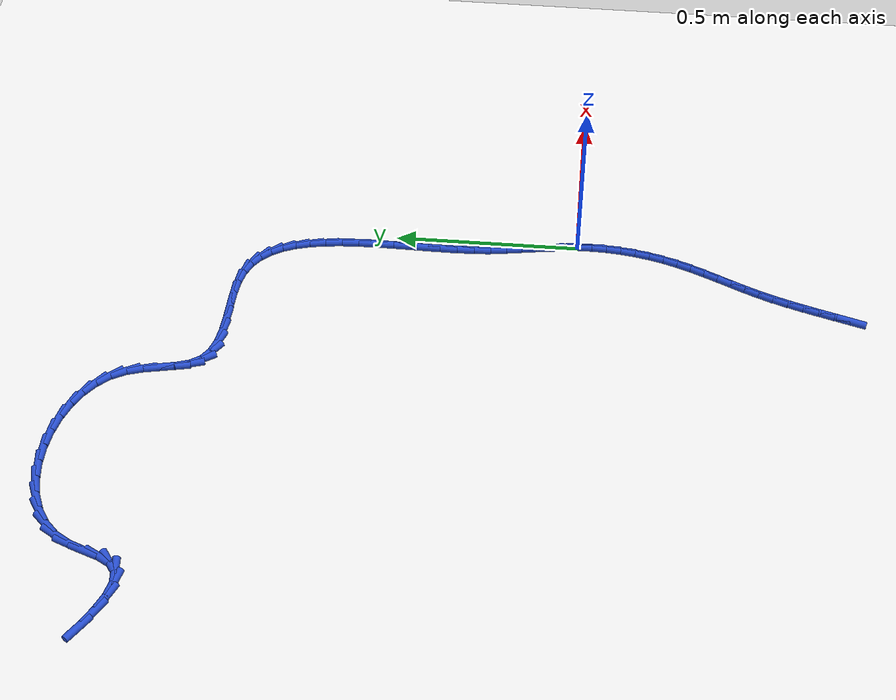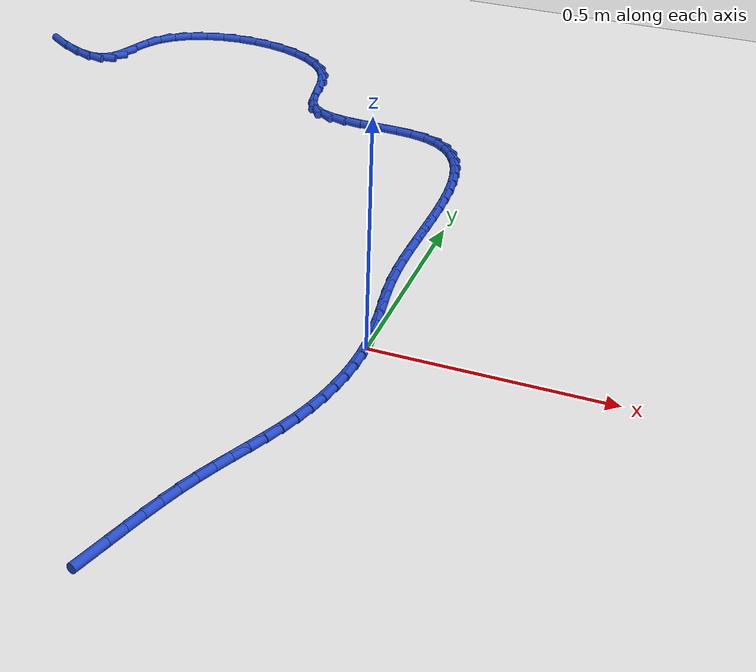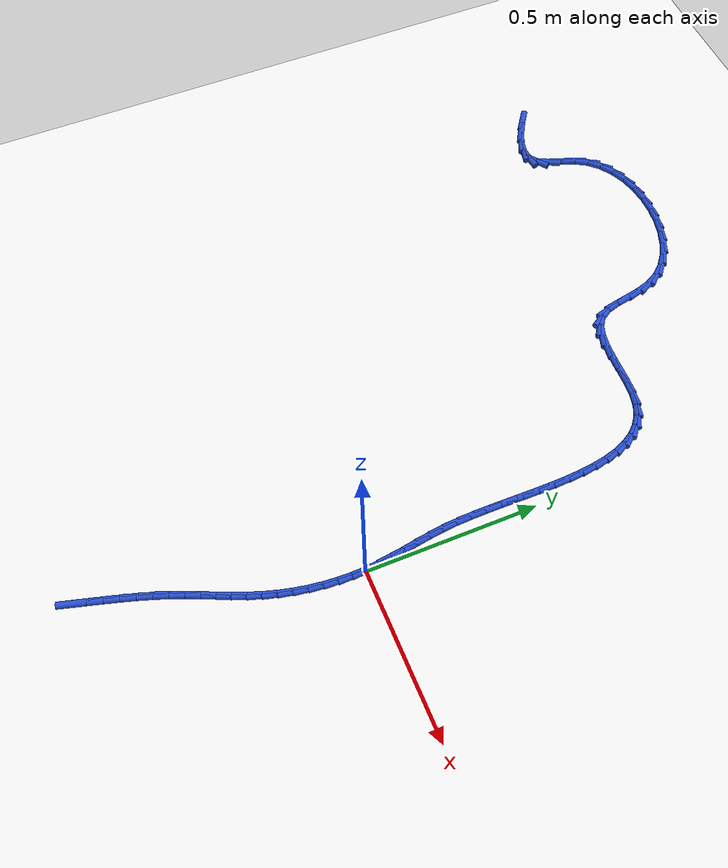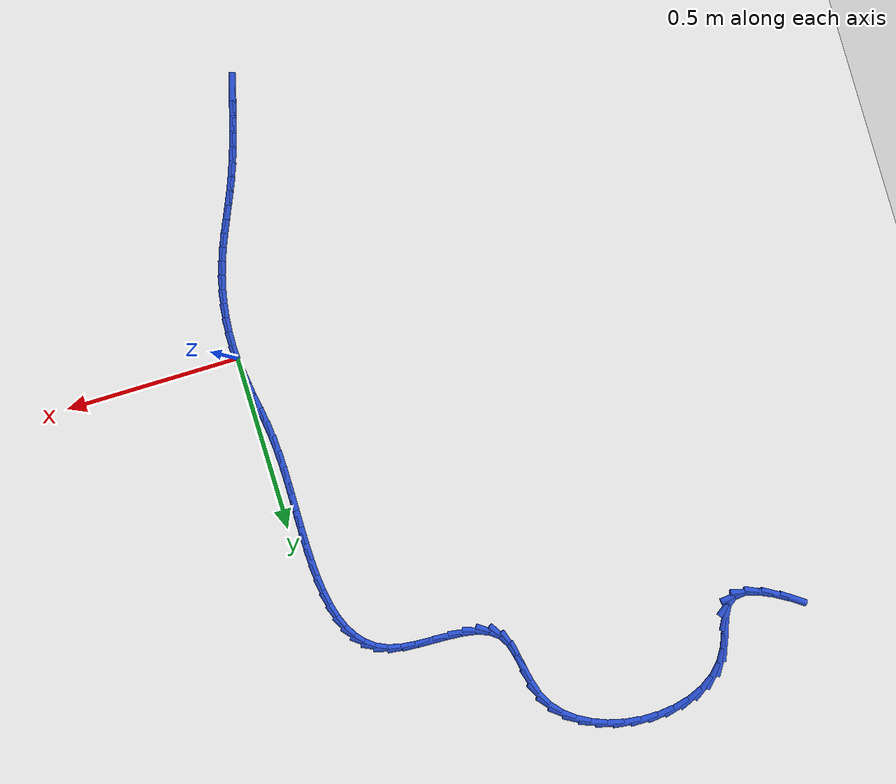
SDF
<sdf version="1.6">
 <world name="default">
  <model name="ground_plane">
   <static>1</static>
   <link name="link">
    <collision name="collision">
     <geometry><plane><normal>0 0 1</normal><size>100 100</size></plane></geometry>
     <surface><friction><ode><mu>100</mu><mu2>50</mu2></ode></friction></surface>
    </collision>
    <visual name="visual">
     <cast_shadows>0</cast_shadows>
     <geometry><plane><normal>0 0 1</normal><size>100 100</size></plane></geometry>
     <material>
      <script><uri>file://media/materials/scripts/gazebo.material</uri><name>Gazebo/WhiteGlow</name></script>
     </material>
    </visual>
   </link>
  </model>
  <model name="line">
   <link name="link_0">
    <pose>-1.5612511283791264e-17 -4.85722573273506e-17 0.01 0 1.57 -1.4862448702870033</pose>
    <collision name="collision">
     <geometry><cylinder><radius>0.01</radius><length>0.08</length></cylinder></geometry>
    </collision>
    <visual name="visual">
     <material>
      <script><name>Gazebo/Blue</name><uri>file://media/materials/scripts/gazebo.material</uri></script>
     </material>
     <geometry><cylinder><radius>0.01</radius><length>0.08</length></cylinder></geometry>
    </visual>
   </link>
   <link name="link_1">
    <pose>-0.003258718003331035 0.038449353384300416 0.01 0 1.57 -1.4411728537391673</pose>
    <collision name="collision">
     <geometry><cylinder><radius>0.01</radius><length>0.08</length></cylinder></geometry>
    </collision>
    <visual name="visual">
     <material>
      <script><name>Gazebo/Blue</name><uri>file://media/materials/scripts/gazebo.material</uri></script>
     </material>
     <geometry><cylinder><radius>0.01</radius><length>0.08</length></cylinder></geometry>
    </visual>
   </link>
   <link name="link_2">
    <pose>-0.008221410162932275 0.07652012922128243 0.01 0 1.57 -1.4147956920683136</pose>
    <collision name="collision">
     <geometry><cylinder><radius>0.01</radius><length>0.08</length></cylinder></geometry>
    </collision>
    <visual name="visual">
     <material>
      <script><name>Gazebo/Blue</name><uri>file://media/materials/scripts/gazebo.material</uri></script>
     </material>
     <geometry><cylinder><radius>0.01</radius><length>0.08</length></cylinder></geometry>
    </visual>
   </link>
   <link name="link_3">
    <pose>-0.014224010775536464 0.11468553762563367 0.01 0 1.57 -1.407584973718065</pose>
    <collision name="collision">
     <geometry><cylinder><radius>0.01</radius><length>0.08</length></cylinder></geometry>
    </collision>
    <visual name="visual">
     <material>
      <script><name>Gazebo/Blue</name><uri>file://media/materials/scripts/gazebo.material</uri></script>
     </material>
     <geometry><cylinder><radius>0.01</radius><length>0.08</length></cylinder></geometry>
    </visual>
   </link>
   <link name="link_4">
    <pose>-0.020602454137876286 0.15341878871204168 0.01 0 1.57 -1.418856955793478</pose>
    <collision name="collision">
     <geometry><cylinder><radius>0.01</radius><length>0.08</length></cylinder></geometry>
    </collision>
    <visual name="visual">
     <material>
      <script><name>Gazebo/Blue</name><uri>file://media/materials/scripts/gazebo.material</uri></script>
     </material>
     <geometry><cylinder><radius>0.01</radius><length>0.08</length></cylinder></geometry>
    </visual>
   </link>
   <link name="link_5">
    <pose>-0.026692674546684465 0.19319309259519418 0.01 0 1.57 -1.4469931721940654</pose>
    <collision name="collision">
     <geometry><cylinder><radius>0.01</radius><length>0.08</length></cylinder></geometry>
    </collision>
    <visual name="visual">
     <material>
      <script><name>Gazebo/Blue</name><uri>file://media/materials/scripts/gazebo.material</uri></script>
     </material>
     <geometry><cylinder><radius>0.01</radius><length>0.08</length></cylinder></geometry>
    </visual>
   </link>
   <link name="link_6">
    <pose>-0.03183060629869373 0.23448165938977883 0.01 0 1.57 -1.4892259229793225</pose>
    <collision name="collision">
     <geometry><cylinder><radius>0.01</radius><length>0.08</length></cylinder></geometry>
    </collision>
    <visual name="visual">
     <material>
      <script><name>Gazebo/Blue</name><uri>file://media/materials/scripts/gazebo.material</uri></script>
     </material>
     <geometry><cylinder><radius>0.01</radius><length>0.08</length></cylinder></geometry>
    </visual>
   </link>
   <link name="link_7">
    <pose>-0.03536742958510055 0.2777445989224827 0.01 0 1.57 -1.5314287881267932</pose>
    <collision name="collision">
     <geometry><cylinder><radius>0.01</radius><length>0.08</length></cylinder></geometry>
    </collision>
    <visual name="visual">
     <material>
      <script><name>Gazebo/Blue</name><uri>file://media/materials/scripts/gazebo.material</uri></script>
     </material>
     <geometry><cylinder><radius>0.01</radius><length>0.08</length></cylinder></geometry>
    </visual>
   </link>
   <link name="link_8">
    <pose>-0.037150559631188164 0.3230156228261835 0.01 0 1.57 -1.5607406526389505</pose>
    <collision name="collision">
     <geometry><cylinder><radius>0.01</radius><length>0.08</length></cylinder></geometry>
    </collision>
    <visual name="visual">
     <material>
      <script><name>Gazebo/Blue</name><uri>file://media/materials/scripts/gazebo.material</uri></script>
     </material>
     <geometry><cylinder><radius>0.01</radius><length>0.08</length></cylinder></geometry>
    </visual>
   </link>
   <link name="link_9">
    <pose>-0.03762120710262899 0.3698182141406869 0.01 0 1.57 1.563150907946527</pose>
    <collision name="collision">
     <geometry><cylinder><radius>0.01</radius><length>0.08</length></cylinder></geometry>
    </collision>
    <visual name="visual">
     <material>
      <script><name>Gazebo/Blue</name><uri>file://media/materials/scripts/gazebo.material</uri></script>
     </material>
     <geometry><cylinder><radius>0.01</radius><length>0.08</length></cylinder></geometry>
    </visual>
   </link>
   <link name="link_10">
    <pose>-0.03725553789822558 0.41764582004124523 0.01 0 1.57 1.5557844448993894</pose>
    <collision name="collision">
     <geometry><cylinder><radius>0.01</radius><length>0.08</length></cylinder></geometry>
    </collision>
    <visual name="visual">
     <material>
      <script><name>Gazebo/Blue</name><uri>file://media/materials/scripts/gazebo.material</uri></script>
     </material>
     <geometry><cylinder><radius>0.01</radius><length>0.08</length></cylinder></geometry>
    </visual>
   </link>
   <link name="link_11">
    <pose>-0.03652971791678038 0.4659918877031102 0.01 0 1.57 1.5581867723345757</pose>
    <collision name="collision">
     <geometry><cylinder><radius>0.01</radius><length>0.08</length></cylinder></geometry>
    </collision>
    <visual name="visual">
     <material>
      <script><name>Gazebo/Blue</name><uri>file://media/materials/scripts/gazebo.material</uri></script>
     </material>
     <geometry><cylinder><radius>0.01</radius><length>0.08</length></cylinder></geometry>
    </visual>
   </link>
   <link name="link_12">
    <pose>-0.0359199130570959 0.514349864301534 0.01 0 1.57 1.5704281151111956</pose>
    <collision name="collision">
     <geometry><cylinder><radius>0.01</radius><length>0.08</length></cylinder></geometry>
    </collision>
    <visual name="visual">
     <material>
      <script><name>Gazebo/Blue</name><uri>file://media/materials/scripts/gazebo.material</uri></script>
     </material>
     <geometry><cylinder><radius>0.01</radius><length>0.08</length></cylinder></geometry>
    </visual>
   </link>
   <link name="link_13">
    <pose>-0.03590228921797464 0.5622131970117685 0.01 0 1.57 -1.5483785040625784</pose>
    <collision name="collision">
     <geometry><cylinder><radius>0.01</radius><length>0.08</length></cylinder></geometry>
    </collision>
    <visual name="visual">
     <material>
      <script><name>Gazebo/Blue</name><uri>file://media/materials/scripts/gazebo.material</uri></script>
     </material>
     <geometry><cylinder><radius>0.01</radius><length>0.08</length></cylinder></geometry>
    </visual>
   </link>
   <link name="link_14">
    <pose>-0.036953012298219096 0.6090753330090657 0.01 0 1.57 -1.5136373803837875</pose>
    <collision name="collision">
     <geometry><cylinder><radius>0.01</radius><length>0.08</length></cylinder></geometry>
    </collision>
    <visual name="visual">
     <material>
      <script><name>Gazebo/Blue</name><uri>file://media/materials/scripts/gazebo.material</uri></script>
     </material>
     <geometry><cylinder><radius>0.01</radius><length>0.08</length></cylinder></geometry>
    </visual>
   </link>
   <link name="link_15">
    <pose>-0.03954824819663176 0.6544297194686776 0.01 0 1.57 -1.4646917946296698</pose>
    <collision name="collision">
     <geometry><cylinder><radius>0.01</radius><length>0.08</length></cylinder></geometry>
    </collision>
    <visual name="visual">
     <material>
      <script><name>Gazebo/Blue</name><uri>file://media/materials/scripts/gazebo.material</uri></script>
     </material>
     <geometry><cylinder><radius>0.01</radius><length>0.08</length></cylinder></geometry>
    </visual>
   </link>
   <link name="link_16">
    <pose>-0.04416416281201512 0.6977698035658562 0.01 0 1.57 -1.3982782623419683</pose>
    <collision name="collision">
     <geometry><cylinder><radius>0.01</radius><length>0.08</length></cylinder></geometry>
    </collision>
    <visual name="visual">
     <material>
      <script><name>Gazebo/Blue</name><uri>file://media/materials/scripts/gazebo.material</uri></script>
     </material>
     <geometry><cylinder><radius>0.01</radius><length>0.08</length></cylinder></geometry>
    </visual>
   </link>
   <link name="link_17">
    <pose>-0.051276922043171656 0.7385890324758535 0.01 0 1.57 -1.3099975276250433</pose>
    <collision name="collision">
     <geometry><cylinder><radius>0.01</radius><length>0.08</length></cylinder></geometry>
    </collision>
    <visual name="visual">
     <material>
      <script><name>Gazebo/Blue</name><uri>file://media/materials/scripts/gazebo.material</uri></script>
     </material>
     <geometry><cylinder><radius>0.01</radius><length>0.08</length></cylinder></geometry>
    </visual>
   </link>
   <link name="link_18">
    <pose>-0.061362691788903884 0.7763808533739213 0.01 0 1.57 -1.1945296538129013</pose>
    <collision name="collision">
     <geometry><cylinder><radius>0.01</radius><length>0.08</length></cylinder></geometry>
    </collision>
    <visual name="visual">
     <material>
      <script><name>Gazebo/Blue</name><uri>file://media/materials/scripts/gazebo.material</uri></script>
     </material>
     <geometry><cylinder><radius>0.01</radius><length>0.08</length></cylinder></geometry>
    </visual>
   </link>
   <link name="link_19">
    <pose>-0.0748976379480143 0.8106387134353118 0.01 0 1.57 -1.0468428096407503</pose>
    <collision name="collision">
     <geometry><cylinder><radius>0.01</radius><length>0.08</length></cylinder></geometry>
    </collision>
    <visual name="visual">
     <material>
      <script><name>Gazebo/Blue</name><uri>file://media/materials/scripts/gazebo.material</uri></script>
     </material>
     <geometry><cylinder><radius>0.01</radius><length>0.08</length></cylinder></geometry>
    </visual>
   </link>
   <link name="link_20">
    <pose>-0.09235792641930539 0.840856059835277 0.01 0 1.57 -0.8653518427793409</pose>
    <collision name="collision">
     <geometry><cylinder><radius>0.01</radius><length>0.08</length></cylinder></geometry>
    </collision>
    <visual name="visual">
     <material>
      <script><name>Gazebo/Blue</name><uri>file://media/materials/scripts/gazebo.material</uri></script>
     </material>
     <geometry><cylinder><radius>0.01</radius><length>0.08</length></cylinder></geometry>
    </visual>
   </link>
   <link name="link_21">
    <pose>-0.11421972310157957 0.8665263397490685 0.01 0 1.57 -0.6568185991958423</pose>
    <collision name="collision">
     <geometry><cylinder><radius>0.01</radius><length>0.08</length></cylinder></geometry>
    </collision>
    <visual name="visual">
     <material>
      <script><name>Gazebo/Blue</name><uri>file://media/materials/scripts/gazebo.material</uri></script>
     </material>
     <geometry><cylinder><radius>0.01</radius><length>0.08</length></cylinder></geometry>
    </visual>
   </link>
   <link name="link_22">
    <pose>-0.14095919389363945 0.8871430003519389 0.01 0 1.57 -0.43866219690416813</pose>
    <collision name="collision">
     <geometry><cylinder><radius>0.01</radius><length>0.08</length></cylinder></geometry>
    </collision>
    <visual name="visual">
     <material>
      <script><name>Gazebo/Blue</name><uri>file://media/materials/scripts/gazebo.material</uri></script>
     </material>
     <geometry><cylinder><radius>0.01</radius><length>0.08</length></cylinder></geometry>
    </visual>
   </link>
   <link name="link_23">
    <pose>-0.17305250469428757 0.90219948881914 0.01 0 1.57 -0.2383044312807469</pose>
    <collision name="collision">
     <geometry><cylinder><radius>0.01</radius><length>0.08</length></cylinder></geometry>
    </collision>
    <visual name="visual">
     <material>
      <script><name>Gazebo/Blue</name><uri>file://media/materials/scripts/gazebo.material</uri></script>
     </material>
     <geometry><cylinder><radius>0.01</radius><length>0.08</length></cylinder></geometry>
    </visual>
   </link>
   <link name="link_24">
    <pose>-0.21080017339107024 0.9113691651961542 0.01 0 1.57 -0.10668738232148889</pose>
    <collision name="collision">
     <geometry><cylinder><radius>0.01</radius><length>0.08</length></cylinder></geometry>
    </collision>
    <visual name="visual">
     <material>
      <script><name>Gazebo/Blue</name><uri>file://media/materials/scripts/gazebo.material</uri></script>
     </material>
     <geometry><cylinder><radius>0.01</radius><length>0.08</length></cylinder></geometry>
    </visual>
   </link>
   <link name="link_25">
    <pose>-0.2529788580198435 0.9158862497840748 0.01 0 1.57 -0.042577228251818686</pose>
    <collision name="collision">
     <geometry><cylinder><radius>0.01</radius><length>0.08</length></cylinder></geometry>
    </collision>
    <visual name="visual">
     <material>
      <script><name>Gazebo/Blue</name><uri>file://media/materials/scripts/gazebo.material</uri></script>
     </material>
     <geometry><cylinder><radius>0.01</radius><length>0.08</length></cylinder></geometry>
    </visual>
   </link>
   <link name="link_26">
    <pose>-0.29758267507103575 0.9177865050962073 0.01 0 1.57 -0.029441684997133778</pose>
    <collision name="collision">
     <geometry><cylinder><radius>0.01</radius><length>0.08</length></cylinder></geometry>
    </collision>
    <visual name="visual">
     <material>
      <script><name>Gazebo/Blue</name><uri>file://media/materials/scripts/gazebo.material</uri></script>
     </material>
     <geometry><cylinder><radius>0.01</radius><length>0.08</length></cylinder></geometry>
    </visual>
   </link>
   <link name="link_27">
    <pose>-0.3425993356885788 0.9191122545187329 0.01 0 1.57 -0.06425380756421745</pose>
    <collision name="collision">
     <geometry><cylinder><radius>0.01</radius><length>0.08</length></cylinder></geometry>
    </collision>
    <visual name="visual">
     <material>
      <script><name>Gazebo/Blue</name><uri>file://media/materials/scripts/gazebo.material</uri></script>
     </material>
     <geometry><cylinder><radius>0.01</radius><length>0.08</length></cylinder></geometry>
    </visual>
   </link>
   <link name="link_28">
    <pose>-0.38601655101640436 0.921905821437833 0.01 0 1.57 -0.15705853035319087</pose>
    <collision name="collision">
     <geometry><cylinder><radius>0.01</radius><length>0.08</length></cylinder></geometry>
    </collision>
    <visual name="visual">
     <material>
      <script><name>Gazebo/Blue</name><uri>file://media/materials/scripts/gazebo.material</uri></script>
     </material>
     <geometry><cylinder><radius>0.01</radius><length>0.08</length></cylinder></geometry>
    </visual>
   </link>
   <link name="link_29">
    <pose>-0.42582203219844467 0.9282095292396894 0.01 0 1.57 -0.3338745355398296</pose>
    <collision name="collision">
     <geometry><cylinder><radius>0.01</radius><length>0.08</length></cylinder></geometry>
    </collision>
    <visual name="visual">
     <material>
      <script><name>Gazebo/Blue</name><uri>file://media/materials/scripts/gazebo.material</uri></script>
     </material>
     <geometry><cylinder><radius>0.01</radius><length>0.08</length></cylinder></geometry>
    </visual>
   </link>
   <link name="link_30">
    <pose>-0.46000349037863153 0.9400657013104841 0.01 0 1.57 -0.6323694863271845</pose>
    <collision name="collision">
     <geometry><cylinder><radius>0.01</radius><length>0.08</length></cylinder></geometry>
    </collision>
    <visual name="visual">
     <material>
      <script><name>Gazebo/Blue</name><uri>file://media/materials/scripts/gazebo.material</uri></script>
     </material>
     <geometry><cylinder><radius>0.01</radius><length>0.08</length></cylinder></geometry>
    </visual>
   </link>
   <link name="link_31">
    <pose>-0.4865486367008969 0.9595166610363981 0.01 0 1.57 -1.018316951791573</pose>
    <collision name="collision">
     <geometry><cylinder><radius>0.01</radius><length>0.08</length></cylinder></geometry>
    </collision>
    <visual name="visual">
     <material>
      <script><name>Gazebo/Blue</name><uri>file://media/materials/scripts/gazebo.material</uri></script>
     </material>
     <geometry><cylinder><radius>0.01</radius><length>0.08</length></cylinder></geometry>
    </visual>
   </link>
   <link name="link_32">
    <pose>-0.5041212802929735 0.9880195365777795 0.01 0 1.57 -1.2750928583027492</pose>
    <collision name="collision">
     <geometry><cylinder><radius>0.01</radius><length>0.08</length></cylinder></geometry>
    </collision>
    <visual name="visual">
     <material>
      <script><name>Gazebo/Blue</name><uri>file://media/materials/scripts/gazebo.material</uri></script>
     </material>
     <geometry><cylinder><radius>0.01</radius><length>0.08</length></cylinder></geometry>
    </visual>
   </link>
   <link name="link_33">
    <pose>-0.5150415776935554 1.0238667120783544 0.01 0 1.57 -1.379720333185816</pose>
    <collision name="collision">
     <geometry><cylinder><radius>0.01</radius><length>0.08</length></cylinder></geometry>
    </collision>
    <visual name="visual">
     <material>
      <script><name>Gazebo/Blue</name><uri>file://media/materials/scripts/gazebo.material</uri></script>
     </material>
     <geometry><cylinder><radius>0.01</radius><length>0.08</length></cylinder></geometry>
    </visual>
   </link>
   <link name="link_34">
    <pose>-0.5228600468036078 1.0642856349234142 0.01 0 1.57 -1.377398346864367</pose>
    <collision name="collision">
     <geometry><cylinder><radius>0.01</radius><length>0.08</length></cylinder></geometry>
    </collision>
    <visual name="visual">
     <material>
      <script><name>Gazebo/Blue</name><uri>file://media/materials/scripts/gazebo.material</uri></script>
     </material>
     <geometry><cylinder><radius>0.01</radius><length>0.08</length></cylinder></geometry>
    </visual>
   </link>
   <link name="link_35">
    <pose>-0.5311281315239995 1.106502951000932 0.01 0 1.57 -1.2816448529172568</pose>
    <collision name="collision">
     <geometry><cylinder><radius>0.01</radius><length>0.08</length></cylinder></geometry>
    </collision>
    <visual name="visual">
     <material>
      <script><name>Gazebo/Blue</name><uri>file://media/materials/scripts/gazebo.material</uri></script>
     </material>
     <geometry><cylinder><radius>0.01</radius><length>0.08</length></cylinder></geometry>
    </visual>
   </link>
   <link name="link_36">
    <pose>-0.5433972757555996 1.1477453061988785 0.01 0 1.57 -1.0886192543655673</pose>
    <collision name="collision">
     <geometry><cylinder><radius>0.01</radius><length>0.08</length></cylinder></geometry>
    </collision>
    <visual name="visual">
     <material>
      <script><name>Gazebo/Blue</name><uri>file://media/materials/scripts/gazebo.material</uri></script>
     </material>
     <geometry><cylinder><radius>0.01</radius><length>0.08</length></cylinder></geometry>
    </visual>
   </link>
   <link name="link_37">
    <pose>-0.5630645112711433 1.1853225793798068 0.01 0 1.57 -0.8631332786445037</pose>
    <collision name="collision">
     <geometry><cylinder><radius>0.01</radius><length>0.08</length></cylinder></geometry>
    </collision>
    <visual name="visual">
     <material>
      <script><name>Gazebo/Blue</name><uri>file://media/materials/scripts/gazebo.material</uri></script>
     </material>
     <geometry><cylinder><radius>0.01</radius><length>0.08</length></cylinder></geometry>
    </visual>
   </link>
   <link name="link_38">
    <pose>-0.5909585028613503 1.2179290796729252 0.01 0 1.57 -0.6678142674106703</pose>
    <collision name="collision">
     <geometry><cylinder><radius>0.01</radius><length>0.08</length></cylinder></geometry>
    </collision>
    <visual name="visual">
     <material>
      <script><name>Gazebo/Blue</name><uri>file://media/materials/scripts/gazebo.material</uri></script>
     </material>
     <geometry><cylinder><radius>0.01</radius><length>0.08</length></cylinder></geometry>
    </visual>
   </link>
   <link name="link_39">
    <pose>-0.6257899730940383 1.2454007534177607 0.01 0 1.57 -0.5024229894165705</pose>
    <collision name="collision">
     <geometry><cylinder><radius>0.01</radius><length>0.08</length></cylinder></geometry>
    </collision>
    <visual name="visual">
     <material>
      <script><name>Gazebo/Blue</name><uri>file://media/materials/scripts/gazebo.material</uri></script>
     </material>
     <geometry><cylinder><radius>0.01</radius><length>0.08</length></cylinder></geometry>
    </visual>
   </link>
   <link name="link_40">
    <pose>-0.6662063686550959 1.2676076546365418 0.01 0 1.57 -0.36012278649121715</pose>
    <collision name="collision">
     <geometry><cylinder><radius>0.01</radius><length>0.08</length></cylinder></geometry>
    </collision>
    <visual name="visual">
     <material>
      <script><name>Gazebo/Blue</name><uri>file://media/materials/scripts/gazebo.material</uri></script>
     </material>
     <geometry><cylinder><radius>0.01</radius><length>0.08</length></cylinder></geometry>
    </visual>
   </link>
   <link name="link_41">
    <pose>-0.710855136230413 1.2844198373514986 0.01 0 1.57 -0.23316942395733173</pose>
    <collision name="collision">
     <geometry><cylinder><radius>0.01</radius><length>0.08</length></cylinder></geometry>
    </collision>
    <visual name="visual">
     <material>
      <script><name>Gazebo/Blue</name><uri>file://media/materials/scripts/gazebo.material</uri></script>
     </material>
     <geometry><cylinder><radius>0.01</radius><length>0.08</length></cylinder></geometry>
    </visual>
   </link>
   <link name="link_42">
    <pose>-0.7583837225058784 1.2957073555848606 0.01 0 1.57 -0.11432570797332499</pose>
    <collision name="collision">
     <geometry><cylinder><radius>0.01</radius><length>0.08</length></cylinder></geometry>
    </collision>
    <visual name="visual">
     <material>
      <script><name>Gazebo/Blue</name><uri>file://media/materials/scripts/gazebo.material</uri></script>
     </material>
     <geometry><cylinder><radius>0.01</radius><length>0.08</length></cylinder></geometry>
    </visual>
   </link>
   <link name="link_43">
    <pose>-0.807439574167382 1.3013402633588576 0.01 0 1.57 0.003080366585114261</pose>
    <collision name="collision">
     <geometry><cylinder><radius>0.01</radius><length>0.08</length></cylinder></geometry>
    </collision>
    <visual name="visual">
     <material>
      <script><name>Gazebo/Blue</name><uri>file://media/materials/scripts/gazebo.material</uri></script>
     </material>
     <geometry><cylinder><radius>0.01</radius><length>0.08</length></cylinder></geometry>
    </visual>
   </link>
   <link name="link_44">
    <pose>-0.8566701379008121 1.301188614695719 0.01 0 1.57 0.12557522661740173</pose>
    <collision name="collision">
     <geometry><cylinder><radius>0.01</radius><length>0.08</length></cylinder></geometry>
    </collision>
    <visual name="visual">
     <material>
      <script><name>Gazebo/Blue</name><uri>file://media/materials/scripts/gazebo.material</uri></script>
     </material>
     <geometry><cylinder><radius>0.01</radius><length>0.08</length></cylinder></geometry>
    </visual>
   </link>
   <link name="link_45">
    <pose>-0.9047228603920594 1.295122463617675 0.01 0 1.57 0.26001394244173315</pose>
    <collision name="collision">
     <geometry><cylinder><radius>0.01</radius><length>0.08</length></cylinder></geometry>
    </collision>
    <visual name="visual">
     <material>
      <script><name>Gazebo/Blue</name><uri>file://media/materials/scripts/gazebo.material</uri></script>
     </material>
     <geometry><cylinder><radius>0.01</radius><length>0.08</length></cylinder></geometry>
    </visual>
   </link>
   <link name="link_46">
    <pose>-0.950245188327012 1.283011864146955 0.01 0 1.57 0.41377559666240427</pose>
    <collision name="collision">
     <geometry><cylinder><radius>0.01</radius><length>0.08</length></cylinder></geometry>
    </collision>
    <visual name="visual">
     <material>
      <script><name>Gazebo/Blue</name><uri>file://media/materials/scripts/gazebo.material</uri></script>
     </material>
     <geometry><cylinder><radius>0.01</radius><length>0.08</length></cylinder></geometry>
    </visual>
   </link>
   <link name="link_47">
    <pose>-0.9918845683915597 1.2647268703057886 0.01 0 1.57 0.59406505190191</pose>
    <collision name="collision">
     <geometry><cylinder><radius>0.01</radius><length>0.08</length></cylinder></geometry>
    </collision>
    <visual name="visual">
     <material>
      <script><name>Gazebo/Blue</name><uri>file://media/materials/scripts/gazebo.material</uri></script>
     </material>
     <geometry><cylinder><radius>0.01</radius><length>0.08</length></cylinder></geometry>
    </visual>
   </link>
   <link name="link_48">
    <pose>-1.028288447271592 1.240137536116406 0.01 0 1.57 0.8052477446286561</pose>
    <collision name="collision">
     <geometry><cylinder><radius>0.01</radius><length>0.08</length></cylinder></geometry>
    </collision>
    <visual name="visual">
     <material>
      <script><name>Gazebo/Blue</name><uri>file://media/materials/scripts/gazebo.material</uri></script>
     </material>
     <geometry><cylinder><radius>0.01</radius><length>0.08</length></cylinder></geometry>
    </visual>
   </link>
   <link name="link_49">
    <pose>-1.0581042716529976 1.209113915601036 0.01 0 1.57 1.040384360212619</pose>
    <collision name="collision">
     <geometry><cylinder><radius>0.01</radius><length>0.08</length></cylinder></geometry>
    </collision>
    <visual name="visual">
     <material>
      <script><name>Gazebo/Blue</name><uri>file://media/materials/scripts/gazebo.material</uri></script>
     </material>
     <geometry><cylinder><radius>0.01</radius><length>0.08</length></cylinder></geometry>
    </visual>
   </link>
   <link name="link_50">
    <pose>-1.0800849661528944 1.1716342930377543 0.01 0 1.57 1.2072469409295552</pose>
    <collision name="collision">
     <geometry><cylinder><radius>0.01</radius><length>0.08</length></cylinder></geometry>
    </collision>
    <visual name="visual">
     <material>
      <script><name>Gazebo/Blue</name><uri>file://media/materials/scripts/gazebo.material</uri></script>
     </material>
     <geometry><cylinder><radius>0.01</radius><length>0.08</length></cylinder></geometry>
    </visual>
   </link>
   <link name="link_51">
    <pose>-1.095734877289373 1.1305001697777635 0.01 0 1.57 1.2311267569901967</pose>
    <collision name="collision">
     <geometry><cylinder><radius>0.01</radius><length>0.08</length></cylinder></geometry>
    </collision>
    <visual name="visual">
     <material>
      <script><name>Gazebo/Blue</name><uri>file://media/materials/scripts/gazebo.material</uri></script>
     </material>
     <geometry><cylinder><radius>0.01</radius><length>0.08</length></cylinder></geometry>
    </visual>
   </link>
   <link name="link_52">
    <pose>-1.1095037157275238 1.0915352671900094 0.01 0 1.57 1.079768653693937</pose>
    <collision name="collision">
     <geometry><cylinder><radius>0.01</radius><length>0.08</length></cylinder></geometry>
    </collision>
    <visual name="visual">
     <material>
      <script><name>Gazebo/Blue</name><uri>file://media/materials/scripts/gazebo.material</uri></script>
     </material>
     <geometry><cylinder><radius>0.01</radius><length>0.08</length></cylinder></geometry>
    </visual>
   </link>
   <link name="link_53">
    <pose>-1.1259855149364908 1.0607113953841394 0.01 0 1.57 0.6357463018794571</pose>
    <collision name="collision">
     <geometry><cylinder><radius>0.01</radius><length>0.08</length></cylinder></geometry>
    </collision>
    <visual name="visual">
     <material>
      <script><name>Gazebo/Blue</name><uri>file://media/materials/scripts/gazebo.material</uri></script>
     </material>
     <geometry><cylinder><radius>0.01</radius><length>0.08</length></cylinder></geometry>
    </visual>
   </link>
   <link name="link_54">
    <pose>-1.1493722763051606 1.0434530660826582 0.01 0 1.57 0.10055534122656933</pose>
    <collision name="collision">
     <geometry><cylinder><radius>0.01</radius><length>0.08</length></cylinder></geometry>
    </collision>
    <visual name="visual">
     <material>
      <script><name>Gazebo/Blue</name><uri>file://media/materials/scripts/gazebo.material</uri></script>
     </material>
     <geometry><cylinder><radius>0.01</radius><length>0.08</length></cylinder></geometry>
    </visual>
   </link>
   <link name="link_55">
    <pose>-1.1802922682106312 1.0403333738567366 0.01 0 1.57 -0.2386878936296153</pose>
    <collision name="collision">
     <geometry><cylinder><radius>0.01</radius><length>0.08</length></cylinder></geometry>
    </collision>
    <visual name="visual">
     <material>
      <script><name>Gazebo/Blue</name><uri>file://media/materials/scripts/gazebo.material</uri></script>
     </material>
     <geometry><cylinder><radius>0.01</radius><length>0.08</length></cylinder></geometry>
    </visual>
   </link>
   <link name="link_56">
    <pose>-1.2175110831985427 1.0493896965315868 0.01 0 1.57 -0.4273201772210817</pose>
    <collision name="collision">
     <geometry><cylinder><radius>0.01</radius><length>0.08</length></cylinder></geometry>
    </collision>
    <visual name="visual">
     <material>
      <script><name>Gazebo/Blue</name><uri>file://media/materials/scripts/gazebo.material</uri></script>
     </material>
     <geometry><cylinder><radius>0.01</radius><length>0.08</length></cylinder></geometry>
    </visual>
   </link>
   <link name="link_57">
    <pose>-1.2597780726802024 1.068637302386784 0.01 0 1.57 -0.5374684256696984</pose>
    <collision name="collision">
     <geometry><cylinder><radius>0.01</radius><length>0.08</length></cylinder></geometry>
    </collision>
    <visual name="visual">
     <material>
      <script><name>Gazebo/Blue</name><uri>file://media/materials/scripts/gazebo.material</uri></script>
     </material>
     <geometry><cylinder><radius>0.01</radius><length>0.08</length></cylinder></geometry>
    </visual>
   </link>
   <link name="link_58">
    <pose>-1.3058425880669164 1.096091459701903 0.01 0 1.57 -0.6058496450434656</pose>
    <collision name="collision">
     <geometry><cylinder><radius>0.01</radius><length>0.08</length></cylinder></geometry>
    </collision>
    <visual name="visual">
     <material>
      <script><name>Gazebo/Blue</name><uri>file://media/materials/scripts/gazebo.material</uri></script>
     </material>
     <geometry><cylinder><radius>0.01</radius><length>0.08</length></cylinder></geometry>
    </visual>
   </link>
   <link name="link_221">
    <pose>-0.20745217922492123 -0.73667657819552 0.01 0 1.57 1.2943620693058102</pose>
    <collision name="collision">
     <geometry><cylinder><radius>0.01</radius><length>0.08</length></cylinder></geometry>
    </collision>
    <visual name="visual">
     <material>
      <script><name>Gazebo/Blue</name><uri>file://media/materials/scripts/gazebo.material</uri></script>
     </material>
     <geometry><cylinder><radius>0.01</radius><length>0.08</length></cylinder></geometry>
    </visual>
   </link>
   <link name="link_222">
    <pose>-0.1958495382458143 -0.6957786722949092 0.01 0 1.57 1.293533930557469</pose>
    <collision name="collision">
     <geometry><cylinder><radius>0.01</radius><length>0.08</length></cylinder></geometry>
    </collision>
    <visual name="visual">
     <material>
      <script><name>Gazebo/Blue</name><uri>file://media/materials/scripts/gazebo.material</uri></script>
     </material>
     <geometry><cylinder><radius>0.01</radius><length>0.08</length></cylinder></geometry>
    </visual>
   </link>
   <link name="link_223">
    <pose>-0.18416121703963068 -0.654708321545131 0.01 0 1.57 1.2855666794573652</pose>
    <collision name="collision">
     <geometry><cylinder><radius>0.01</radius><length>0.08</length></cylinder></geometry>
    </collision>
    <visual name="visual">
     <material>
      <script><name>Gazebo/Blue</name><uri>file://media/materials/scripts/gazebo.material</uri></script>
     </material>
     <geometry><cylinder><radius>0.01</radius><length>0.08</length></cylinder></geometry>
    </visual>
   </link>
   <link name="link_224">
    <pose>-0.17215645574824578 -0.6137678759455513 0.01 0 1.57 1.2703162849710046</pose>
    <collision name="collision">
     <geometry><cylinder><radius>0.01</radius><length>0.08</length></cylinder></geometry>
    </collision>
    <visual name="visual">
     <material>
      <script><name>Gazebo/Blue</name><uri>file://media/materials/scripts/gazebo.material</uri></script>
     </material>
     <geometry><cylinder><radius>0.01</radius><length>0.08</length></cylinder></geometry>
    </visual>
   </link>
   <link name="link_225">
    <pose>-0.1596044945135345 -0.5732596854955334 0.01 0 1.57 1.2474160964628922</pose>
    <collision name="collision">
     <geometry><cylinder><radius>0.01</radius><length>0.08</length></cylinder></geometry>
    </collision>
    <visual name="visual">
     <material>
      <script><name>Gazebo/Blue</name><uri>file://media/materials/scripts/gazebo.material</uri></script>
     </material>
     <geometry><cylinder><radius>0.01</radius><length>0.08</length></cylinder></geometry>
    </visual>
   </link>
   <link name="link_226">
    <pose>-0.1462745734773717 -0.5334861001944409 0.01 0 1.57 1.2162876986660567</pose>
    <collision name="collision">
     <geometry><cylinder><radius>0.01</radius><length>0.08</length></cylinder></geometry>
    </collision>
    <visual name="visual">
     <material>
      <script><name>Gazebo/Blue</name><uri>file://media/materials/scripts/gazebo.material</uri></script>
     </material>
     <geometry><cylinder><radius>0.01</radius><length>0.08</length></cylinder></geometry>
    </visual>
   </link>
   <link name="link_227">
    <pose>-0.1319362436781229 -0.49474917807606983 0.01 0 1.57 1.1816655872971487</pose>
    <collision name="collision">
     <geometry><cylinder><radius>0.01</radius><length>0.08</length></cylinder></geometry>
    </collision>
    <visual name="visual">
     <material>
      <script><name>Gazebo/Blue</name><uri>file://media/materials/scripts/gazebo.material</uri></script>
     </material>
     <geometry><cylinder><radius>0.01</radius><length>0.08</length></cylinder></geometry>
    </visual>
   </link>
   <link name="link_228">
    <pose>-0.11653410947152264 -0.45718658309821514 0.01 0 1.57 1.1583080147369467</pose>
    <collision name="collision">
     <geometry><cylinder><radius>0.01</radius><length>0.08</length></cylinder></geometry>
    </collision>
    <visual name="visual">
     <material>
      <script><name>Gazebo/Blue</name><uri>file://media/materials/scripts/gazebo.material</uri></script>
     </material>
     <geometry><cylinder><radius>0.01</radius><length>0.08</length></cylinder></geometry>
    </visual>
   </link>
   <link name="link_229">
    <pose>-0.10047936376513612 -0.42049780189645186 0.01 0 1.57 1.1494414808599493</pose>
    <collision name="collision">
     <geometry><cylinder><radius>0.01</radius><length>0.08</length></cylinder></geometry>
    </collision>
    <visual name="visual">
     <material>
      <script><name>Gazebo/Blue</name><uri>file://media/materials/scripts/gazebo.material</uri></script>
     </material>
     <geometry><cylinder><radius>0.01</radius><length>0.08</length></cylinder></geometry>
    </visual>
   </link>
   <link name="link_230">
    <pose>-0.08426009221596249 -0.38431011046399466 0.01 0 1.57 1.155601738607575</pose>
    <collision name="collision">
     <geometry><cylinder><radius>0.01</radius><length>0.08</length></cylinder></geometry>
    </collision>
    <visual name="visual">
     <material>
      <script><name>Gazebo/Blue</name><uri>file://media/materials/scripts/gazebo.material</uri></script>
     </material>
     <geometry><cylinder><radius>0.01</radius><length>0.08</length></cylinder></geometry>
    </visual>
   </link>
   <link name="link_231">
    <pose>-0.06836438048100209 -0.3482507847940605 0.01 0 1.57 1.177002388857722</pose>
    <collision name="collision">
     <geometry><cylinder><radius>0.01</radius><length>0.08</length></cylinder></geometry>
    </collision>
    <visual name="visual">
     <material>
      <script><name>Gazebo/Blue</name><uri>file://media/materials/scripts/gazebo.material</uri></script>
     </material>
     <geometry><cylinder><radius>0.01</radius><length>0.08</length></cylinder></geometry>
    </visual>
   </link>
   <link name="link_232">
    <pose>-0.05328031421725408 -0.3119471008798642 0.01 0 1.57 1.2134737983739714</pose>
    <collision name="collision">
     <geometry><cylinder><radius>0.01</radius><length>0.08</length></cylinder></geometry>
    </collision>
    <visual name="visual">
     <material>
      <script><name>Gazebo/Blue</name><uri>file://media/materials/scripts/gazebo.material</uri></script>
     </material>
     <geometry><cylinder><radius>0.01</radius><length>0.08</length></cylinder></geometry>
    </visual>
   </link>
   <link name="link_233">
    <pose>-0.03949597908171796 -0.275026334714621 0.01 0 1.57 1.2638485285594727</pose>
    <collision name="collision">
     <geometry><cylinder><radius>0.01</radius><length>0.08</length></cylinder></geometry>
    </collision>
    <visual name="visual">
     <material>
      <script><name>Gazebo/Blue</name><uri>file://media/materials/scripts/gazebo.material</uri></script>
     </material>
     <geometry><cylinder><radius>0.01</radius><length>0.08</length></cylinder></geometry>
    </visual>
   </link>
   <link name="link_234">
    <pose>-0.02748622332241529 -0.23713653359330122 0.01 0 1.57 1.3192716066191748</pose>
    <collision name="collision">
     <geometry><cylinder><radius>0.01</radius><length>0.08</length></cylinder></geometry>
    </collision>
    <visual name="visual">
     <material>
      <script><name>Gazebo/Blue</name><uri>file://media/materials/scripts/gazebo.material</uri></script>
     </material>
     <geometry><cylinder><radius>0.01</radius><length>0.08</length></cylinder></geometry>
    </visual>
   </link>
   <link name="link_235">
    <pose>-0.017501027195085925 -0.1982785933879991 0.01 0 1.57 1.3735827921290962</pose>
    <collision name="collision">
     <geometry><cylinder><radius>0.01</radius><length>0.08</length></cylinder></geometry>
    </collision>
    <visual name="visual">
     <material>
      <script><name>Gazebo/Blue</name><uri>file://media/materials/scripts/gazebo.material</uri></script>
     </material>
     <geometry><cylinder><radius>0.01</radius><length>0.08</length></cylinder></geometry>
    </visual>
   </link>
   <link name="link_236">
    <pose>-0.009602448704430278 -0.15874828563637772 0.01 0 1.57 1.4275244140770627</pose>
    <collision name="collision">
     <geometry><cylinder><radius>0.01</radius><length>0.08</length></cylinder></geometry>
    </collision>
    <visual name="visual">
     <material>
      <script><name>Gazebo/Blue</name><uri>file://media/materials/scripts/gazebo.material</uri></script>
     </material>
     <geometry><cylinder><radius>0.01</radius><length>0.08</length></cylinder></geometry>
    </visual>
   </link>
   <link name="link_237">
    <pose>-0.003846772295021098 -0.1188504413801022 0.01 0 1.57 1.4820301821302313</pose>
    <collision name="collision">
     <geometry><cylinder><radius>0.01</radius><length>0.08</length></cylinder></geometry>
    </collision>
    <visual name="visual">
     <material>
      <script><name>Gazebo/Blue</name><uri>file://media/materials/scripts/gazebo.material</uri></script>
     </material>
     <geometry><cylinder><radius>0.01</radius><length>0.08</length></cylinder></geometry>
    </visual>
   </link>
   <link name="link_238">
    <pose>-0.0002902824114310856 -0.07888989166083651 0.01 0 1.57 1.5380519788689822</pose>
    <collision name="collision">
     <geometry><cylinder><radius>0.01</radius><length>0.08</length></cylinder></geometry>
    </collision>
    <visual name="visual">
     <material>
      <script><name>Gazebo/Blue</name><uri>file://media/materials/scripts/gazebo.material</uri></script>
     </material>
     <geometry><cylinder><radius>0.01</radius><length>0.08</length></cylinder></geometry>
    </visual>
   </link>
   <link name="link_239">
    <pose>0.0010107365017668164 -0.03917146752024783 0.01 0 1.57 -1.5449991753708348</pose>
    <collision name="collision">
     <geometry><cylinder><radius>0.01</radius><length>0.08</length></cylinder></geometry>
    </collision>
    <visual name="visual">
     <material>
      <script><name>Gazebo/Blue</name><uri>file://media/materials/scripts/gazebo.material</uri></script>
     </material>
     <geometry><cylinder><radius>0.01</radius><length>0.08</length></cylinder></geometry>
    </visual>
   </link>
   <link name="link_240">
    <pose>-2.42861286636753e-17 -2.0816681711721685e-16 0.01 0 1.57 -1.4828503721216078</pose>
    <collision name="collision">
     <geometry><cylinder><radius>0.01</radius><length>0.08</length></cylinder></geometry>
    </collision>
    <visual name="visual">
     <material>
      <script><name>Gazebo/Blue</name><uri>file://media/materials/scripts/gazebo.material</uri></script>
     </material>
     <geometry><cylinder><radius>0.01</radius><length>0.08</length></cylinder></geometry>
    </visual>
   </link>
   <link name="link_241">
    <pose>-0.0033787763613043614 0.038319679858241355 0.01 0 1.57 -1.4158948740606054</pose>
    <collision name="collision">
     <geometry><cylinder><radius>0.01</radius><length>0.08</length></cylinder></geometry>
    </collision>
    <visual name="visual">
     <material>
      <script><name>Gazebo/Blue</name><uri>file://media/materials/scripts/gazebo.material</uri></script>
     </material>
     <geometry><cylinder><radius>0.01</radius><length>0.08</length></cylinder></geometry>
    </visual>
   </link>
   <link name="link_242">
    <pose>-0.009181877026718955 0.07548274101281177 0.01 0 1.57 -1.4497489546193356</pose>
    <collision name="collision">
     <geometry><cylinder><radius>0.01</radius><length>0.08</length></cylinder></geometry>
    </collision>
    <visual name="visual">
     <material>
      <script><name>Gazebo/Blue</name><uri>file://media/materials/scripts/gazebo.material</uri></script>
     </material>
     <geometry><cylinder><radius>0.01</radius><length>0.08</length></cylinder></geometry>
    </visual>
   </link>
  </model>
 </world>
</sdf>
